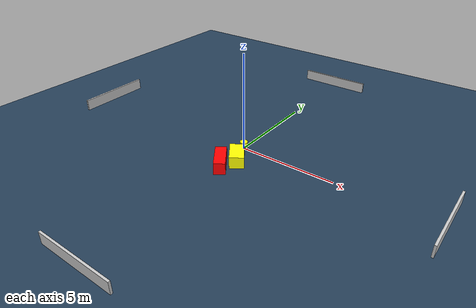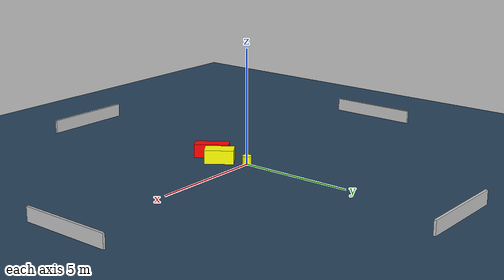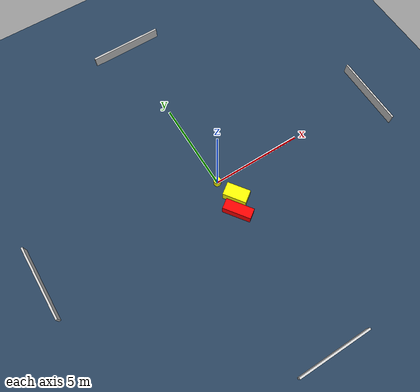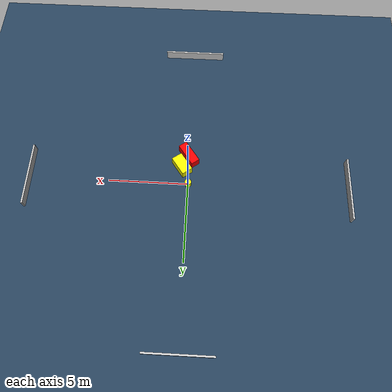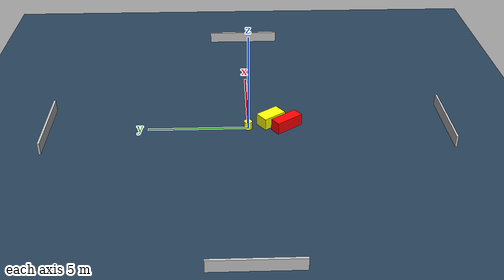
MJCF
<?xml version="1.0" ?>
<mujoco model="generated_environment">
  <option timestep="0.01" integrator="RK4" cone="elliptic"/>
  <default>
    <geom density="1"/>
  </default>
  <asset>
    <texture builtin="gradient" height="3072" name="skybox" rgb1="0.3 0.5 0.7" rgb2="0 0 0" type="skybox" width="512"/>
    <texture builtin="checker" height="300" name="groundplane" rgb1="0.2 0.3 0.4" rgb2="0.1 0.2 0.3" type="2d" width="300"/>
    <material name="groundplane" reflectance="0.2" texrepeat="5 5" texture="groundplane"/>
  </asset>
  <worldbody>
    <light dir="0 0 -1" directional="true" pos="0 0 1.5"/>
    <geom condim="3" friction="0.5 0.005 0.001" material="groundplane" name="floor" pos="0 0 0" size="0 0 0.05" type="plane"/>
    <body name="walls">
      <geom name="wall_1" condim="4" pos="-10.0 0.0 0.3" rgba="0.800000011920929 0.800000011920929 0.800000011920929 1.0" size="0.05 2.0 0.3" type="box"/>
      <geom name="wall_2" condim="4" pos="10.0 0.0 0.3" rgba="0.800000011920929 0.800000011920929 0.800000011920929 1.0" size="0.05 2.0 0.3" type="box"/>
      <geom name="wall_3" condim="4" pos="0.0 -10.0 0.3" rgba="0.800000011920929 0.800000011920929 0.800000011920929 1.0" size="2.0 0.05 0.3" type="box"/>
      <geom name="wall_4" condim="4" pos="0.0 10.0 0.3" rgba="0.800000011920929 0.800000011920929 0.800000011920929 1.0" size="2.0 0.05 0.3" type="box"/>
    </body>
    <body name="robot">
      <joint name="joint_x" type="slide" pos="0 0 0" axis="1 0 0"/>
      <joint name="joint_y" type="slide" pos="0 0 0" axis="0 1 0"/>
      <geom name="robot" type="cylinder" pos="0.0 0.0 0.2" size="0.2 0.2 0.0" mass="5.0" friction="1.0 0.005 0.0001" condim="4" rgba="1.0 1.0 0.0 1.0"/>
    </body>
    <body name="obstacle_1_movable">
      <geom name="obstacle_1_movable" condim="4" pos="0.43619118386792394 -1.1607024768176946 0.3" euler="0 0 125.68939865477195" friction="0.0 0.005 0.001" rgba="1.0 1.0 0.0 1.0" size="0.633390769480149 0.3566901940006766 0.3" type="box" mass="0.1"/>
      <joint type="free"/>
    </body>
    <body name="obstacle_2_static">
      <geom name="obstacle_2_static" condim="4" pos="0.03798103294022745 -1.9351493505946133 0.3" euler="0 0 35.839803025055346" friction="0.0 0.005 0.001" rgba="1.0 0.0 0.0 1.0" size="0.28246398833183206 0.7561955749110274 0.3" type="box"/>
    </body>
  </worldbody>
  <actuator>
    <motor name="actuator_x" joint="joint_x" gear="1" ctrlrange="-1 1"/>
    <motor name="actuator_y" joint="joint_y" gear="1" ctrlrange="-1 1"/>
  </actuator>
</mujoco>
